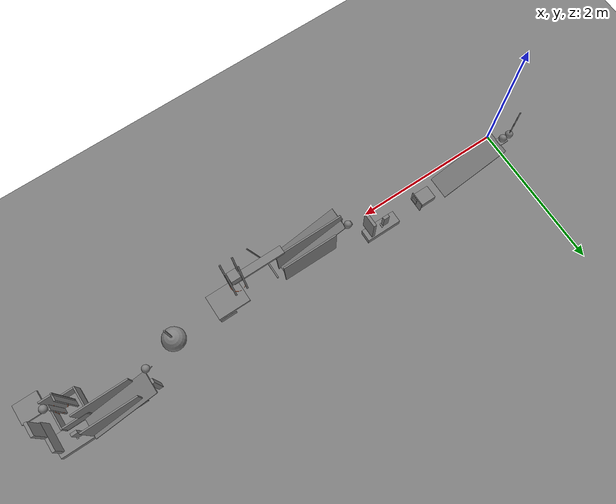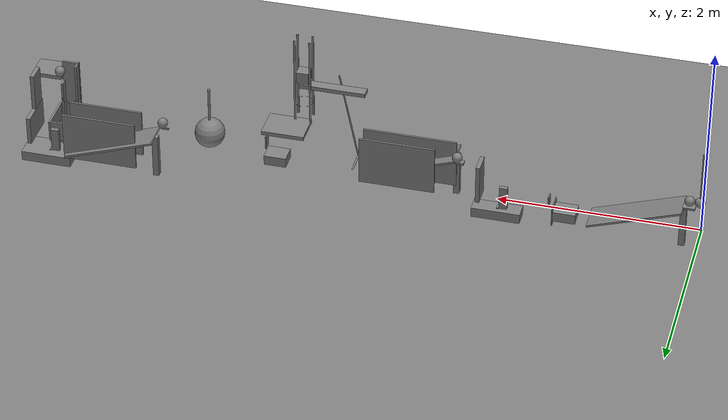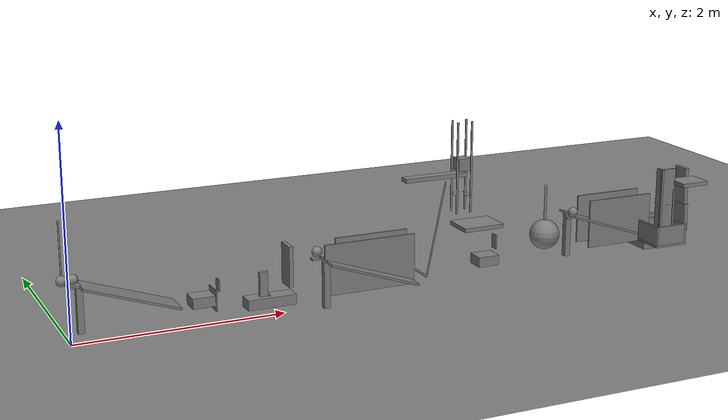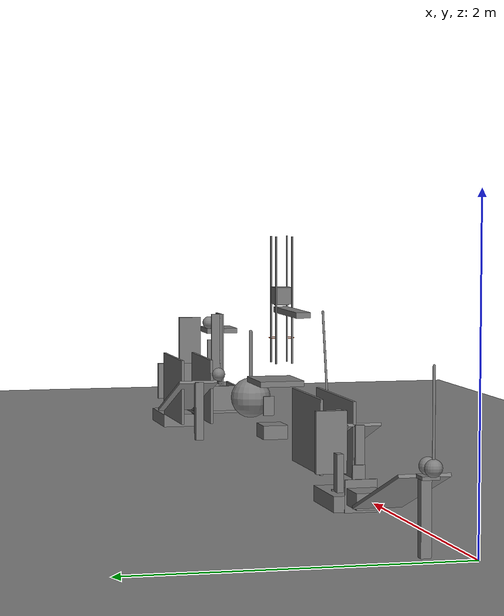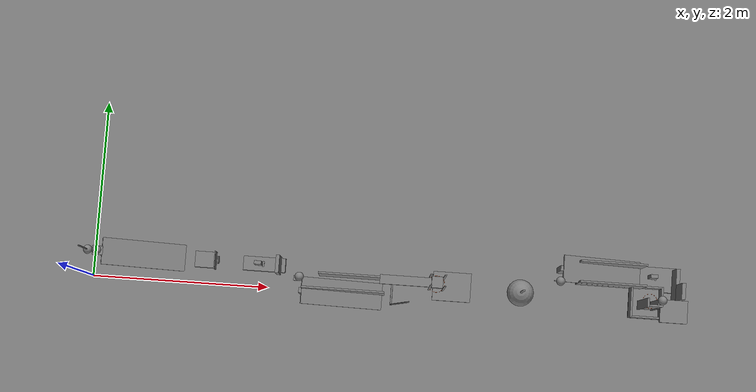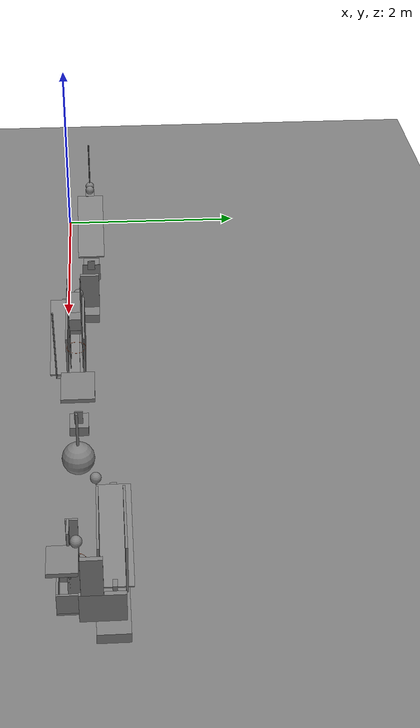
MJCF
<mujoco model="gravity_relay_with_latched_cart_assist">
  <compiler angle="radian"/>
  <option timestep="0.002"/>
  <worldbody>
    <geom name="floor" type="plane" size="20 20 0.1" friction="0.68 0 0"/>
    <body name="ramp1">
      <geom name="ramp1_deck" type="box" pos="0.59912 0.26 0.29519" size="0.474999 0.15 0.01" euler="0 0.331614 0" friction="0.68 0 0" solref="0.01 1"/>
      <geom name="ramp1_leg" type="box" pos="0.15 0.26 0.224917" size="0.03 0.03 0.224917" friction="0.68 0 0" solref="0.01 1"/>
    </body>
    <body name="ball1 perch">
      <geom name="ball1 perch" type="box" pos="0.1 0.26 0.44929" size="0.06 0.05 0.01" friction="0.68 0 0" solref="0.01 1"/>
    </body>
    <body name="pendulum1" pos="0 0.26 1.05929">
      <joint name="pendulum1_hinge" type="hinge" pos="0 0 0" axis="0 1 0" limited="true" range="-1.13446 0.959931" damping="0.04"/>
      <geom name="pendulum1" type="sphere" pos="0 0 -0.55" size="0.05" mass="0.38" friction="0.68 0 0" solref="0.01 1"/>
      <geom name="pendulum1 rod" type="capsule" size="0.0075" fromto="0 0 0 0 0 -0.5" mass="0.02" contype="0" conaffinity="0"/>
    </body>
    <body name="ball1" pos="0.1 0.26 0.50929">
      <freejoint/>
      <geom name="ball1" type="sphere" pos="0 0 0" size="0.05" mass="0.2" condim="6" friction="0.68 0 0" solref="0.01 1"/>
    </body>
    <body name="cart1" pos="1.27824 0.26 100.15">
      <joint name="cart1_guide_hinge" type="hinge" pos="0 0 0" axis="0 1 0" limited="true" range="-0.00523599 0" stiffness="2000" springref="-0.0139626" damping="2000"/>
      <geom name="cart1" type="box" pos="0 0 -100" size="0.11 0.09 0.05" mass="0.499" friction="0.68 0 0" solref="0.01 1"/>
      <geom name="cart1 striker" type="box" pos="0.164 0 -99.875" size="0.006 0.04 0.055" mass="0.001" friction="0.68 0 0" solref="0.01 1"/>
    </body>
    <body name="cart1 release latch" pos="1.39324 0.26 0.05">
      <joint name="cart1_release_hinge" type="hinge" pos="0 0 0" axis="0 1 0" limited="true" range="0 1.65806" stiffness="0.01" springref="-5.23599" damping="0.04"/>
      <geom name="cart1 release latch" type="box" pos="0 0 0.1" size="0.1 0.1 0.005" euler="0 -1.5708 0" mass="0.3" friction="0.68 0 0" solref="0.01 1"/>
    </body>
    <body name="domino1 landing">
      <geom name="domino1 landing" type="box" pos="1.94824 0.26 0.05" size="0.24 0.08 0.05" friction="0.68 0 0" solref="0.01 1"/>
    </body>
    <body name="domino1" pos="1.88824 0.26 0.22">
      <freejoint/>
      <geom name="domino1" type="box" pos="0 0 0" size="0.04 0.02 0.12" mass="0.25" friction="0.68 0 0" solref="0.01 1"/>
    </body>
    <body name="domino1 toe stop">
      <geom name="domino1 toe stop" type="box" pos="1.93824 0.26 0.105" size="0.01 0.03 0.005" friction="0.68 0 0" solref="0.01 1"/>
    </body>
    <body name="flap1" pos="2.12824 0.245 0.18">
      <joint name="flap1_hinge" type="hinge" pos="0 0 0" axis="0 1 0" limited="true" range="0 1.13446" damping="0.04"/>
      <geom name="flap1" type="box" pos="0 0 0.2" size="0.2 0.1 0.02" euler="0 -1.5708 0" mass="0.3" friction="0.68 0 0" solref="0.01 1"/>
    </body>
    <body name="ball2 perch">
      <geom name="ball2 perch" type="box" pos="2.35324 0.11 0.44929" size="0.04 0.03 0.01" friction="0.68 0 0" solref="0.01 1"/>
    </body>
    <body name="ramp2">
      <geom name="ramp2_deck" type="box" pos="2.85736 -0.02 0.29519" size="0.474999 0.15 0.01" euler="0 0.331614 0" friction="0.68 0 0" solref="0.01 1"/>
      <geom name="ramp2_leg" type="box" pos="2.40824 -0.02 0.224917" size="0.03 0.03 0.224917" friction="0.68 0 0" solref="0.01 1"/>
    </body>
    <body name="ball2" pos="2.37824 0.125 0.50929">
      <freejoint/>
      <geom name="ball2" type="sphere" pos="0 0 0" size="0.05" mass="0.2" condim="6" friction="0.68 0 0" solref="0.01 1"/>
    </body>
    <body name="ramp2 right guide">
      <geom name="ramp2 right guide" type="box" pos="2.87236 0.01 0.35" size="0.46412 0.01 0.25" friction="0.68 0 0" solref="0.01 1"/>
    </body>
    <body name="ramp2 left guide">
      <geom name="ramp2 left guide" type="box" pos="2.96236 0.18 0.35" size="0.37412 0.01 0.25" friction="0.68 0 0" solref="0.01 1"/>
    </body>
    <body name="seesaw1" pos="3.60657 0.125 1.1">
      <joint name="seesaw1_hinge" type="hinge" pos="0 0 0" axis="0 1 0" limited="true" range="-0.698132 0" stiffness="0.01" springref="-99.1347" damping="0.04"/>
      <geom name="seesaw1" type="box" pos="-4.44089e-16 0 0" size="0.325 0.05 0.02" mass="0.545" friction="0.68 0 0" solref="0.01 1"/>
      <geom name="seesaw1 carrier" type="box" pos="0.29 0 0.036" size="0.02 0.05 0.004" mass="0.001" friction="0.68 0 0" solref="0.01 1"/>
      <geom name="seesaw1 trigger rod" type="capsule" size="0.0075" fromto="0 -0.225 0 -0.19009 -0.225 -0.91" mass="0.003" friction="0.68 0 0" solref="0.01 1"/>
      <geom name="seesaw1 trigger bar" type="capsule" size="0.01" fromto="-0.19009 -0.225 -0.91 -0.19009 0 -0.91" mass="0.001" friction="0.68 0 0" solref="0.01 1"/>
    </body>
    <body name="block1" pos="3.89657 0.125 1.2">
      <freejoint/>
      <geom name="block1" type="box" pos="0 0 0" size="0.06 0.06 0.06" mass="0.35" friction="0.68 0 0" solref="0.01 1"/>
    </body>
    <body name="block1 near right guide">
      <geom name="block1 near right guide" type="box" pos="3.82157 0.067 1.17" size="0.01 0.004 0.45" friction="0.68 0 0" solref="0.01 1"/>
    </body>
    <body name="block1 near left guide">
      <geom name="block1 near left guide" type="box" pos="3.82157 0.183 1.17" size="0.01 0.004 0.45" friction="0.68 0 0" solref="0.01 1"/>
    </body>
    <body name="block1 far right guide">
      <geom name="block1 far right guide" type="box" pos="3.97157 0.067 1.17" size="0.01 0.004 0.45" friction="0.68 0 0" solref="0.01 1"/>
    </body>
    <body name="block1 far left guide">
      <geom name="block1 far left guide" type="box" pos="3.97157 0.183 1.17" size="0.01 0.004 0.45" friction="0.68 0 0" solref="0.01 1"/>
    </body>
    <body name="ring1">
      <geom name="ring1_00" type="capsule" size="0.001" fromto="3.98757 0.125 0.9 3.98064 0.159824 0.9" friction="0.68 0 0" solref="0.01 1" rgba="0.9 0.3 0.05 1"/>
      <geom name="ring1_01" type="capsule" size="0.001" fromto="3.98064 0.159824 0.9 3.96092 0.189347 0.9" friction="0.68 0 0" solref="0.01 1" rgba="0.9 0.3 0.05 1"/>
      <geom name="ring1_02" type="capsule" size="0.001" fromto="3.96092 0.189347 0.9 3.93139 0.209073 0.9" friction="0.68 0 0" solref="0.01 1" rgba="0.9 0.3 0.05 1"/>
      <geom name="ring1_03" type="capsule" size="0.001" fromto="3.93139 0.209073 0.9 3.89657 0.216 0.9" friction="0.68 0 0" solref="0.01 1" rgba="0.9 0.3 0.05 1"/>
      <geom name="ring1_04" type="capsule" size="0.001" fromto="3.89657 0.216 0.9 3.86175 0.209073 0.9" friction="0.68 0 0" solref="0.01 1" rgba="0.9 0.3 0.05 1"/>
      <geom name="ring1_05" type="capsule" size="0.001" fromto="3.86175 0.209073 0.9 3.83222 0.189347 0.9" friction="0.68 0 0" solref="0.01 1" rgba="0.9 0.3 0.05 1"/>
      <geom name="ring1_06" type="capsule" size="0.001" fromto="3.83222 0.189347 0.9 3.8125 0.159824 0.9" friction="0.68 0 0" solref="0.01 1" rgba="0.9 0.3 0.05 1"/>
      <geom name="ring1_07" type="capsule" size="0.001" fromto="3.8125 0.159824 0.9 3.80557 0.125 0.9" friction="0.68 0 0" solref="0.01 1" rgba="0.9 0.3 0.05 1"/>
      <geom name="ring1_08" type="capsule" size="0.001" fromto="3.80557 0.125 0.9 3.8125 0.0901758 0.9" friction="0.68 0 0" solref="0.01 1" rgba="0.9 0.3 0.05 1"/>
      <geom name="ring1_09" type="capsule" size="0.001" fromto="3.8125 0.0901758 0.9 3.83222 0.0606533 0.9" friction="0.68 0 0" solref="0.01 1" rgba="0.9 0.3 0.05 1"/>
      <geom name="ring1_10" type="capsule" size="0.001" fromto="3.83222 0.0606533 0.9 3.86175 0.040927 0.9" friction="0.68 0 0" solref="0.01 1" rgba="0.9 0.3 0.05 1"/>
      <geom name="ring1_11" type="capsule" size="0.001" fromto="3.86175 0.040927 0.9 3.89657 0.034 0.9" friction="0.68 0 0" solref="0.01 1" rgba="0.9 0.3 0.05 1"/>
      <geom name="ring1_12" type="capsule" size="0.001" fromto="3.89657 0.034 0.9 3.93139 0.040927 0.9" friction="0.68 0 0" solref="0.01 1" rgba="0.9 0.3 0.05 1"/>
      <geom name="ring1_13" type="capsule" size="0.001" fromto="3.93139 0.040927 0.9 3.96092 0.0606533 0.9" friction="0.68 0 0" solref="0.01 1" rgba="0.9 0.3 0.05 1"/>
      <geom name="ring1_14" type="capsule" size="0.001" fromto="3.96092 0.0606533 0.9 3.98064 0.0901758 0.9" friction="0.68 0 0" solref="0.01 1" rgba="0.9 0.3 0.05 1"/>
      <geom name="ring1_15" type="capsule" size="0.001" fromto="3.98064 0.0901758 0.9 3.98757 0.125 0.9" friction="0.68 0 0" solref="0.01 1" rgba="0.9 0.3 0.05 1"/>
    </body>
    <body name="door1" pos="4.28657 0.125 0.57">
      <joint name="door1_hinge" type="hinge" pos="0 0 0" axis="0 1 0" limited="true" range="-1.22173 0" stiffness="0.04" springref="23.2129" damping="0.04"/>
      <geom name="door1" type="box" pos="-0.21 0 0" size="0.21 0.16 0.02" euler="0 3.14159 0" mass="0.45" friction="0.68 0 0" solref="0.01 1"/>
    </body>
    <body name="cart2" pos="4.17657 0.125 100.2">
      <joint name="cart2_guide_hinge" type="hinge" pos="0 0 0" axis="0 1 0" limited="true" range="-0.00523599 0" damping="2000"/>
      <geom name="cart2" type="box" pos="0 0 -100" size="0.11 0.09 0.05" mass="0.499" friction="0.68 0 0" solref="0.01 1"/>
      <geom name="cart2 striker" type="box" pos="0.104 0 -99.83" size="0.006 0.04 0.07" mass="0.001" friction="0.68 0 0" solref="0.01 1"/>
    </body>
    <body name="pendulum2" pos="4.85657 0.125 0.87">
      <joint name="pendulum2_hinge" type="hinge" pos="0 0 0" axis="0 1 0" limited="true" range="-0.663225 0" damping="0.04"/>
      <geom name="pendulum2" type="sphere" pos="0 0 -0.5" size="0.15" mass="0.1" friction="0.68 0 0" solref="0.01 1"/>
      <geom name="pendulum2 rod" type="capsule" size="0.0125" fromto="0 0 0 0 0 -0.35" mass="0.25" contype="0" conaffinity="0"/>
    </body>
    <body name="ball3 perch">
      <geom name="ball3 perch" type="box" pos="5.26157 0.284 0.44929" size="0.04 0.005 0.01" friction="0.68 0 0" solref="0.01 1"/>
    </body>
    <body name="ramp3">
      <geom name="ramp3_deck" type="box" pos="5.76569 0.43 0.29519" size="0.474999 0.15 0.01" euler="0 0.331614 0" friction="0.68 0 0" solref="0.01 1"/>
      <geom name="ramp3_leg" type="box" pos="5.31657 0.43 0.224917" size="0.03 0.03 0.224917" friction="0.68 0 0" solref="0.01 1"/>
    </body>
    <body name="ball3" pos="5.28657 0.28 0.50929">
      <freejoint/>
      <geom name="ball3" type="sphere" pos="0 0 0" size="0.05" mass="0.2" condim="6" friction="0.68 0 0" solref="0.01 1"/>
    </body>
    <body name="ramp3 right guide">
      <geom name="ramp3 right guide" type="box" pos="5.86569 0.29 0.35" size="0.36912 0.01 0.25" friction="0.68 0 0" solref="0.01 1"/>
    </body>
    <body name="ramp3 left guide">
      <geom name="ramp3 left guide" type="box" pos="5.86569 0.52 0.35" size="0.36912 0.01 0.25" friction="0.68 0 0" solref="0.01 1"/>
    </body>
    <body name="domino2 landing">
      <geom name="domino2 landing" type="box" pos="6.42481 0.4 0.05" size="0.25 0.14 0.05" friction="0.68 0 0" solref="0.01 1"/>
    </body>
    <body name="domino2" pos="6.35481 0.42 0.22">
      <freejoint/>
      <geom name="domino2" type="box" pos="0 0 0" size="0.04 0.02 0.12" mass="0.25" friction="0.68 0 0" solref="0.01 1"/>
    </body>
    <body name="domino2 toe stop">
      <geom name="domino2 toe stop" type="box" pos="6.40481 0.42 0.105" size="0.01 0.03 0.005" friction="0.68 0 0" solref="0.01 1"/>
    </body>
    <body name="flap2" pos="6.59481 0.24 0.48">
      <joint name="flap2_hinge" type="hinge" pos="0 0 0" axis="0 1 0" limited="true" range="-1.0472 0" damping="0.04"/>
      <geom name="flap2" type="box" pos="0 0 0.19" size="0.19 0.09 0.02" euler="0 -1.5708 0" mass="0.27" friction="0.68 0 0" solref="0.01 1"/>
      <geom name="flap2 trigger" type="box" pos="0 0.08 -0.145" size="0.145 0.19 0.02" euler="0 -1.5708 0" mass="0.01" friction="0.68 0 0" solref="0.01 1"/>
    </body>
    <body name="shelf1">
      <geom name="shelf1" type="box" pos="6.50981 0.015 0.76" size="0.15 0.125 0.02" friction="0.68 0 0" solref="0.01 1"/>
    </body>
    <body name="ball4" pos="6.37481 0.125 0.83">
      <freejoint/>
      <geom name="ball4" type="sphere" pos="0 0 0" size="0.05" mass="0.2" condim="6" friction="0.68 0 0" solref="0.01 1"/>
    </body>
    <body name="ring2">
      <geom name="ring2_00" type="capsule" size="0.001" fromto="6.36581 0.125 0.53 6.35964 0.155997 0.53" friction="0.68 0 0" solref="0.01 1" rgba="0.9 0.3 0.05 1"/>
      <geom name="ring2_01" type="capsule" size="0.001" fromto="6.35964 0.155997 0.53 6.34209 0.182276 0.53" friction="0.68 0 0" solref="0.01 1" rgba="0.9 0.3 0.05 1"/>
      <geom name="ring2_02" type="capsule" size="0.001" fromto="6.34209 0.182276 0.53 6.31581 0.199834 0.53" friction="0.68 0 0" solref="0.01 1" rgba="0.9 0.3 0.05 1"/>
      <geom name="ring2_03" type="capsule" size="0.001" fromto="6.31581 0.199834 0.53 6.28481 0.206 0.53" friction="0.68 0 0" solref="0.01 1" rgba="0.9 0.3 0.05 1"/>
      <geom name="ring2_04" type="capsule" size="0.001" fromto="6.28481 0.206 0.53 6.25381 0.199834 0.53" friction="0.68 0 0" solref="0.01 1" rgba="0.9 0.3 0.05 1"/>
      <geom name="ring2_05" type="capsule" size="0.001" fromto="6.25381 0.199834 0.53 6.22753 0.182276 0.53" friction="0.68 0 0" solref="0.01 1" rgba="0.9 0.3 0.05 1"/>
      <geom name="ring2_06" type="capsule" size="0.001" fromto="6.22753 0.182276 0.53 6.20998 0.155997 0.53" friction="0.68 0 0" solref="0.01 1" rgba="0.9 0.3 0.05 1"/>
      <geom name="ring2_07" type="capsule" size="0.001" fromto="6.20998 0.155997 0.53 6.20381 0.125 0.53" friction="0.68 0 0" solref="0.01 1" rgba="0.9 0.3 0.05 1"/>
      <geom name="ring2_08" type="capsule" size="0.001" fromto="6.20381 0.125 0.53 6.20998 0.0940026 0.53" friction="0.68 0 0" solref="0.01 1" rgba="0.9 0.3 0.05 1"/>
      <geom name="ring2_09" type="capsule" size="0.001" fromto="6.20998 0.0940026 0.53 6.22753 0.0677244 0.53" friction="0.68 0 0" solref="0.01 1" rgba="0.9 0.3 0.05 1"/>
      <geom name="ring2_10" type="capsule" size="0.001" fromto="6.22753 0.0677244 0.53 6.25381 0.0501658 0.53" friction="0.68 0 0" solref="0.01 1" rgba="0.9 0.3 0.05 1"/>
      <geom name="ring2_11" type="capsule" size="0.001" fromto="6.25381 0.0501658 0.53 6.28481 0.044 0.53" friction="0.68 0 0" solref="0.01 1" rgba="0.9 0.3 0.05 1"/>
      <geom name="ring2_12" type="capsule" size="0.001" fromto="6.28481 0.044 0.53 6.31581 0.0501658 0.53" friction="0.68 0 0" solref="0.01 1" rgba="0.9 0.3 0.05 1"/>
      <geom name="ring2_13" type="capsule" size="0.001" fromto="6.31581 0.0501658 0.53 6.34209 0.0677244 0.53" friction="0.68 0 0" solref="0.01 1" rgba="0.9 0.3 0.05 1"/>
      <geom name="ring2_14" type="capsule" size="0.001" fromto="6.34209 0.0677244 0.53 6.35964 0.0940026 0.53" friction="0.68 0 0" solref="0.01 1" rgba="0.9 0.3 0.05 1"/>
      <geom name="ring2_15" type="capsule" size="0.001" fromto="6.35964 0.0940026 0.53 6.36581 0.125 0.53" friction="0.68 0 0" solref="0.01 1" rgba="0.9 0.3 0.05 1"/>
    </body>
    <body name="ball4 forward catch">
      <geom name="ball4 forward catch" type="box" pos="6.20981 0.09 0.54" size="0.01 0.05 0.37" friction="0.68 0 0" solref="0.01 1"/>
    </body>
    <body name="ball4 rear guide">
      <geom name="ball4 rear guide" type="box" pos="6.35981 0.09 0.43" size="0.01 0.05 0.26" friction="0.68 0 0" solref="0.01 1"/>
    </body>
    <body name="ball4 right guide">
      <geom name="ball4 right guide" type="box" pos="6.28481 0.06 0.54" size="0.085 0.01 0.37" friction="0.68 0 0" solref="0.01 1"/>
    </body>
    <body name="box1">
      <geom name="box1_base" type="box" pos="6.28481 0.125 0.12" size="0.18 0.18 0.01" friction="0.68 0 0" solref="0.01 1"/>
      <geom name="box1_near_wall" type="box" pos="6.11481 0.125 0.23" size="0.01 0.18 0.1" friction="0.68 0 0" solref="0.01 1"/>
      <geom name="box1_far_wall" type="box" pos="6.45481 0.125 0.23" size="0.01 0.18 0.1" friction="0.68 0 0" solref="0.01 1"/>
      <geom name="box1_left_wall" type="box" pos="6.28481 0.295 0.23" size="0.16 0.01 0.1" friction="0.68 0 0" solref="0.01 1"/>
      <geom name="box1_right_wall" type="box" pos="6.28481 -0.045 0.23" size="0.16 0.01 0.1" friction="0.68 0 0" solref="0.01 1"/>
    </body>
  </worldbody>
  <keyframe>
    <key name="start" qpos="0.959931 0.1 0.26 0.50929 1 0 0 0 0 0 1.88824 0.26 0.22 1 0 0 0 0 2.37824 0.125 0.50929 1 0 0 0 0 3.89657 0.125 1.2 1 0 0 0 0 0 0 5.28657 0.28 0.50929 1 0 0 0 6.35481 0.42 0.22 1 0 0 0 0 6.37481 0.125 0.83 1 0 0 0" qvel="0 0 0 0 0 0 0 0 0 0 0 0 0 0 0 0 0 0 0 0 0 0 0 0 0 0 0 0 0 0 0 0 0 0 0 0 0 0 0 0 0 0 0 0 0 0 0 0 0 0 0"/>
  </keyframe>
</mujoco>
